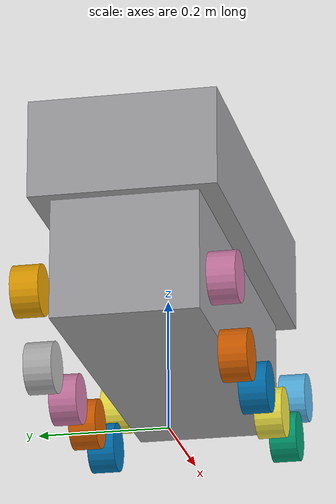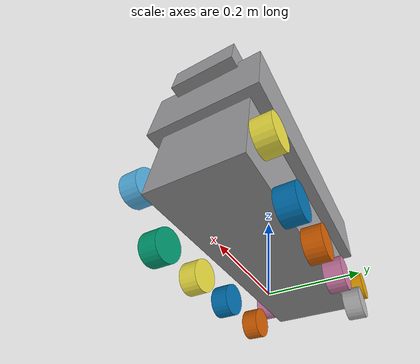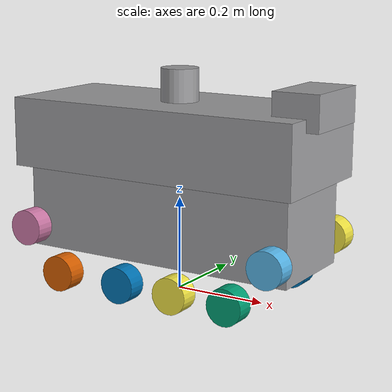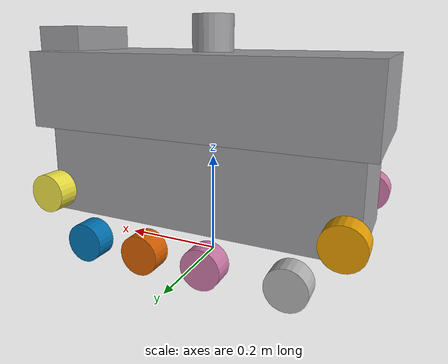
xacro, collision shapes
<?xml version="1.0"?>
<robot name="agos" xmlns:xacro="http://www.ros.org/wiki/xacro">

  <!-- RGB-D camera image size and rate (agos_sensors.xacro). The launch
       files pass these on: camera_width:=640 camera_height:=480
       camera_rate:=15 gives the old, sharper but slower camera. -->
  <xacro:arg name="camera_width" default="320"/>
  <xacro:arg name="camera_height" default="240"/>
  <xacro:arg name="camera_rate" default="10"/>

  <!-- Track / wheels -->
  <xacro:property name="ground_to_base"   value="0.178"/>   <!-- ground -> base_link -->
  <xacro:property name="track_y"          value="0.1436"/>  <!-- track centre, either side -->
  <xacro:property name="track_width"      value="0.042"/>
  <xacro:property name="track_separation" value="${2*track_y}"/>
  <xacro:property name="skid_factor"      value="1.0"/>
  <xacro:property name="wheel_radius"     value="0.0385"/>
  <xacro:property name="wheel_z"          value="${wheel_radius - ground_to_base}"/>
  <xacro:property name="wheel_mass"       value="0.25"/>

  <!-- Chassis -->
  <xacro:property name="chassis_length" value="0.66"/>
  <xacro:property name="chassis_width"  value="0.381"/>  <!-- overall, incl. tracks -->
  <xacro:property name="chassis_height" value="0.40"/>
  <xacro:property name="chassis_mass"   value="15.0"/>

  <xacro:include filename="$(find agos_sim)/urdf/agos_materials.xacro"/>
  <xacro:include filename="$(find agos_sim)/urdf/agos_tracks.xacro"/>
  <xacro:include filename="$(find agos_sim)/urdf/agos_sensors.xacro"/>

  <!-- One coloured part of the CAD model (already in metres, +x forward) -->
  <xacro:macro name="agos_mesh_visual" params="part material">
    <visual>
      <origin xyz="0 0 0" rpy="0 0 0"/>
      <geometry>
        <mesh filename="package://agos_sim/meshes/agos_${part}.stl"/>
      </geometry>
      <material name="${material}"/>
    </visual>
  </xacro:macro>

  <!-- ===================== base_footprint -> base_link -> chassis_link ===================== -->
  <link name="base_footprint"/>

  <joint name="base_footprint_joint" type="fixed">
    <parent link="base_footprint"/>
    <child link="base_link"/>
    <origin xyz="0 0 ${ground_to_base}" rpy="0 0 0"/>
  </joint>

  <link name="base_link"/>

  <joint name="base_link_to_chassis" type="fixed">
    <parent link="base_link"/>
    <child link="chassis_link"/>
    <origin xyz="0 0 0" rpy="0 0 0"/>
  </joint>

  <link name="chassis_link">

    <!-- Visual: the CAD model, split by its colours -->
    <xacro:agos_mesh_visual part="body"    material="agos_body_grey"/>
    <xacro:agos_mesh_visual part="treads"  material="agos_tread_red"/>
    <xacro:agos_mesh_visual part="accents" material="agos_accent_yellow"/>
    <xacro:agos_mesh_visual part="light"   material="agos_light_grey"/>
    <xacro:agos_mesh_visual part="green"   material="agos_green_body"/>
    <xacro:agos_mesh_visual part="dark"    material="agos_sensor_dark"/>

    <!-- Lid and upper hull -->
    <collision>
      <origin xyz="0 0 0.1543" rpy="0 0 0"/>
      <geometry><box size="${chassis_length} 0.28 0.1486"/></geometry>
    </collision>
    <!-- Lower hull and belly between the tracks -->
    <collision>
      <origin xyz="0 0 -0.01" rpy="0 0 0"/>
      <geometry><box size="0.62 0.22 0.18"/></geometry>
    </collision>
    <!-- Camera housing on the front of the lid -->
    <collision>
      <origin xyz="0.3066 0 0.2400" rpy="0 0 0"/>
      <geometry><box size="0.099 0.165 0.074"/></geometry>
    </collision>
    <!-- LiDAR and its pedestal -->
    <collision>
      <origin xyz="0 0 0.2508" rpy="0 0 0"/>
      <geometry><cylinder radius="0.04" length="0.0952"/></geometry>
    </collision>

    <inertial>
      <mass value="${chassis_mass}"/>
      <origin xyz="0 0 0" rpy="0 0 0"/>
      <inertia
        ixx="${(chassis_mass/12.0)*(chassis_width*chassis_width + chassis_height*chassis_height)}" ixy="0.0" ixz="0.0"
        iyy="${(chassis_mass/12.0)*(chassis_length*chassis_length + chassis_height*chassis_height)}" iyz="0.0"
        izz="${(chassis_mass/12.0)*(chassis_length*chassis_length + chassis_width*chassis_width)}"/>
    </inertial>
  </link>

  <!-- ===================== Tracks ===================== -->
  <xacro:agos_track side="left"  y_sign="1"/>
  <xacro:agos_track side="right" y_sign="-1"/>

  <!-- ===================== Sensors ===================== -->
  <xacro:agos_camera/>
  <xacro:agos_lidar/>
  <xacro:agos_imu/>

</robot>

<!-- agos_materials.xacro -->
<robot xmlns:xacro="http://www.ros.org/wiki/xacro">

  <!-- Colours of the CAD parts (read from the per-face colours stored in
       Designs/STL/AGOS V1.stl) -->
  <material name="agos_body_grey">
    <color rgba="0.62 0.62 0.63 1.0"/>
  </material>
  <material name="agos_tread_red">
    <color rgba="0.74 0.19 0.13 1.0"/>
  </material>
  <material name="agos_accent_yellow">
    <color rgba="0.90 0.68 0.13 1.0"/>
  </material>
  <material name="agos_light_grey">
    <color rgba="0.94 0.94 0.93 1.0"/>
  </material>
  <material name="agos_green_body">
    <color rgba="0.26 0.58 0.26 1.0"/>
  </material>
  <material name="agos_sensor_dark">
    <color rgba="0.08 0.08 0.08 1.0"/>
  </material>

</robot>

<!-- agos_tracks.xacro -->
<robot xmlns:xacro="http://www.ros.org/wiki/xacro">

  <xacro:macro name="agos_wheel" params="side y_sign pos x z mu mu_side">
    <link name="${side}_wheel_${pos}">
      <collision>
        <origin xyz="0 0 0" rpy="${pi/2} 0 0"/>
        <geometry>
          <cylinder radius="${wheel_radius}" length="${track_width}"/>
        </geometry>
      </collision>
      <inertial>
        <mass value="${wheel_mass}"/>
        <origin xyz="0 0 0" rpy="0 0 0"/>
        <inertia
          ixx="${(wheel_mass/12.0)*(3*wheel_radius*wheel_radius + track_width*track_width)}" ixy="0.0" ixz="0.0"
          iyy="${(wheel_mass/2.0)*wheel_radius*wheel_radius}" iyz="0.0"
          izz="${(wheel_mass/12.0)*(3*wheel_radius*wheel_radius + track_width*track_width)}"/>
      </inertial>
    </link>

    <joint name="${side}_wheel_${pos}_joint" type="continuous">
      <parent link="base_link"/>
      <child link="${side}_wheel_${pos}"/>
      <origin xyz="${x} ${y_sign * track_y} ${z}" rpy="0 0 0"/>
      <axis xyz="0 1 0"/>
      <dynamics damping="0.1" friction="0.05"/>
    </joint>

    <!-- mu1 acts along fdir1, the axle (sideways); mu2 along the track -->
    <gazebo reference="${side}_wheel_${pos}">
      <mu1>${mu_side}</mu1>
      <mu2>${mu}</mu2>
      <fdir1>0 0 1</fdir1>
    </gazebo>
  </xacro:macro>

  <xacro:macro name="agos_track" params="side y_sign">
    <xacro:agos_wheel side="${side}" y_sign="${y_sign}" pos="idler_front" x="0.29"    z="-0.05"       mu="0.8" mu_side="0.8"/>
    <xacro:agos_wheel side="${side}" y_sign="${y_sign}" pos="road_1"      x="0.2029"  z="${wheel_z}" mu="1.0" mu_side="0.05"/>
    <xacro:agos_wheel side="${side}" y_sign="${y_sign}" pos="road_2"      x="0.0759"  z="${wheel_z}" mu="1.0" mu_side="1.0"/>
    <xacro:agos_wheel side="${side}" y_sign="${y_sign}" pos="road_3"      x="-0.0511" z="${wheel_z}" mu="1.0" mu_side="1.0"/>
    <xacro:agos_wheel side="${side}" y_sign="${y_sign}" pos="road_4"      x="-0.2058" z="${wheel_z}" mu="1.0" mu_side="0.05"/>
    <xacro:agos_wheel side="${side}" y_sign="${y_sign}" pos="idler_rear"  x="-0.29"   z="-0.05"       mu="0.8" mu_side="0.8"/>
  </xacro:macro>

  <!-- Differential Drive Plugin: every wheel on a side turns together, like a track -->
  <gazebo>
    <plugin filename="gz-sim-diff-drive-system" name="gz::sim::systems::DiffDrive">
      <left_joint>left_wheel_idler_front_joint</left_joint>
      <left_joint>left_wheel_road_1_joint</left_joint>
      <left_joint>left_wheel_road_2_joint</left_joint>
      <left_joint>left_wheel_road_3_joint</left_joint>
      <left_joint>left_wheel_road_4_joint</left_joint>
      <left_joint>left_wheel_idler_rear_joint</left_joint>
      <right_joint>right_wheel_idler_front_joint</right_joint>
      <right_joint>right_wheel_road_1_joint</right_joint>
      <right_joint>right_wheel_road_2_joint</right_joint>
      <right_joint>right_wheel_road_3_joint</right_joint>
      <right_joint>right_wheel_road_4_joint</right_joint>
      <right_joint>right_wheel_idler_rear_joint</right_joint>
      <wheel_separation>${track_separation * skid_factor}</wheel_separation>
      <wheel_radius>${wheel_radius}</wheel_radius>
      <topic>cmd_vel</topic>
      <odom_topic>odom</odom_topic>
      <tf_topic>/model/agos/tf_odom_raw</tf_topic>
      <frame_id>odom</frame_id>
      <child_frame_id>base_footprint</child_frame_id>
      <odom_publish_frequency>50</odom_publish_frequency>
    </plugin>
    <plugin filename="gz-sim-joint-state-publisher-system" name="gz::sim::systems::JointStatePublisher">
      <topic>joint_states</topic>
      <update_rate>20</update_rate>
    </plugin>
  </gazebo>

</robot>

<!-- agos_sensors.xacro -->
<robot xmlns:xacro="http://www.ros.org/wiki/xacro">

  <!-- ===================== Orbbec front-facing RGB-D camera ===================== -->
  <xacro:macro name="agos_camera">
    <link name="camera_link">
      <inertial>
        <mass value="0.12"/>
        <origin xyz="0 0 0" rpy="0 0 0"/>
        <inertia ixx="0.0002" ixy="0.0" ixz="0.0" iyy="0.0002" iyz="0.0" izz="0.0002"/>
      </inertial>
    </link>

    <!-- Centre of the lens panel on the CAD camera, on top of the front of the lid -->
    <joint name="camera_joint" type="fixed">
      <parent link="chassis_link"/>
      <child link="camera_link"/>
      <origin xyz="0.331 0 0.2465" rpy="0 0 0"/>
    </joint>

    <!-- Optical frame: images/pointclouds must be stamped z-forward/x-right/y-down -->
    <link name="camera_optical_frame"/>
    <joint name="camera_optical_joint" type="fixed">
      <parent link="camera_link"/>
      <child link="camera_optical_frame"/>
      <origin xyz="0 0 0" rpy="${-pi/2} 0 ${-pi/2}"/>
    </joint>

    <!-- Keep camera_link as its own link in Gazebo so the headlight below
         stays at the camera instead of being merged into the chassis. -->
    <gazebo reference="camera_joint">
      <preserveFixedJoint>true</preserveFixedJoint>
    </gazebo>

    <gazebo reference="camera_link">
      <sensor name="orbbec_rgbd_camera" type="rgbd_camera">
        <always_on>true</always_on>
        <update_rate>$(arg camera_rate)</update_rate>
        <visualize>false</visualize>
        <topic>camera</topic>
        <gz_frame_id>camera_optical_frame</gz_frame_id>
        <camera>
          <horizontal_fov>1.204</horizontal_fov>
          <image>
            <width>$(arg camera_width)</width>
            <height>$(arg camera_height)</height>
            <format>R8G8B8</format>
          </image>
          <clip>
            <near>0.1</near>
            <far>8.0</far>
          </clip>
        </camera>
      </sensor>

      <!-- Front LED headlight (the proposal's high-intensity front LED).
           Without it the inside of the pipe is lit by ambient light only. -->
      <light name="agos_headlight" type="spot">
        <pose>0.03 0 0 0 0 0</pose>
        <direction>1 0 0</direction>
        <diffuse>1.0 0.97 0.9 1</diffuse>
        <specular>0.3 0.3 0.3 1</specular>
        <attenuation>
          <range>6.0</range>
          <constant>0.4</constant>
          <linear>0.1</linear>
          <quadratic>0.02</quadratic>
        </attenuation>
        <spot>
          <inner_angle>0.5</inner_angle>
          <outer_angle>1.1</outer_angle>
          <falloff>1.0</falloff>
        </spot>
        <cast_shadows>false</cast_shadows>
      </light>
    </gazebo>
  </xacro:macro>

  <!-- ===================== Okdo LD06 2D LiDAR ===================== -->
  <xacro:macro name="agos_lidar">
    <link name="lidar_link">
      <inertial>
        <mass value="0.05"/>
        <origin xyz="0 0 0" rpy="0 0 0"/>
        <inertia ixx="0.00001" ixy="0.0" ixz="0.0" iyy="0.00001" iyz="0.0" izz="0.00001"/>
      </inertial>
    </link>

    <!-- Scan plane of the LD06 on top of the lid (CAD LiDAR body: z 0.265-0.298).
         It sits 1 cm above the top of the camera, so the camera does not block it. -->
    <joint name="lidar_joint" type="fixed">
      <parent link="chassis_link"/>
      <child link="lidar_link"/>
      <origin xyz="0 0 0.287" rpy="0 0 0"/>
    </joint>

    <gazebo reference="lidar_link">
      <sensor name="okdo_2d_lidar" type="gpu_lidar">
        <always_on>true</always_on>
        <update_rate>10</update_rate>
        <topic>scan</topic>
        <gz_frame_id>lidar_link</gz_frame_id>
        <lidar>
          <scan>
            <horizontal>
              <samples>360</samples>
              <min_angle>-3.14159</min_angle>
              <max_angle>3.14159</max_angle>
            </horizontal>
          </scan>
          <range>
            <min>0.12</min>
            <max>10.0</max>
            <resolution>0.01</resolution>
          </range>
        </lidar>
      </sensor>
    </gazebo>
  </xacro:macro>

  <!-- ===================== 9-DOF IMU ===================== -->
  <xacro:macro name="agos_imu">
    <link name="imu_link">
      <inertial>
        <mass value="0.05"/>
        <origin xyz="0 0 0" rpy="0 0 0"/>
        <inertia ixx="0.00002" ixy="0.0" ixz="0.0" iyy="0.00002" iyz="0.0" izz="0.00002"/>
      </inertial>
    </link>

    <!-- Inside the body, at the CAD origin -->
    <joint name="imu_joint" type="fixed">
      <parent link="chassis_link"/>
      <child link="imu_link"/>
      <origin xyz="0 0 0.01" rpy="0 0 0"/>
    </joint>

    <gazebo reference="imu_link">
      <sensor name="agos_imu" type="imu">
        <always_on>true</always_on>
        <update_rate>100</update_rate>
        <topic>imu/data</topic>
        <gz_frame_id>imu_link</gz_frame_id>
        <imu>
          <angular_velocity>
            <x><noise type="gaussian"><mean>0</mean><stddev>0.002</stddev></noise></x>
            <y><noise type="gaussian"><mean>0</mean><stddev>0.002</stddev></noise></y>
            <z><noise type="gaussian"><mean>0</mean><stddev>0.002</stddev></noise></z>
          </angular_velocity>
          <linear_acceleration>
            <x><noise type="gaussian"><mean>0</mean><stddev>0.02</stddev></noise></x>
            <y><noise type="gaussian"><mean>0</mean><stddev>0.02</stddev></noise></y>
            <z><noise type="gaussian"><mean>0</mean><stddev>0.02</stddev></noise></z>
          </linear_acceleration>
        </imu>
      </sensor>
    </gazebo>
  </xacro:macro>

</robot>
